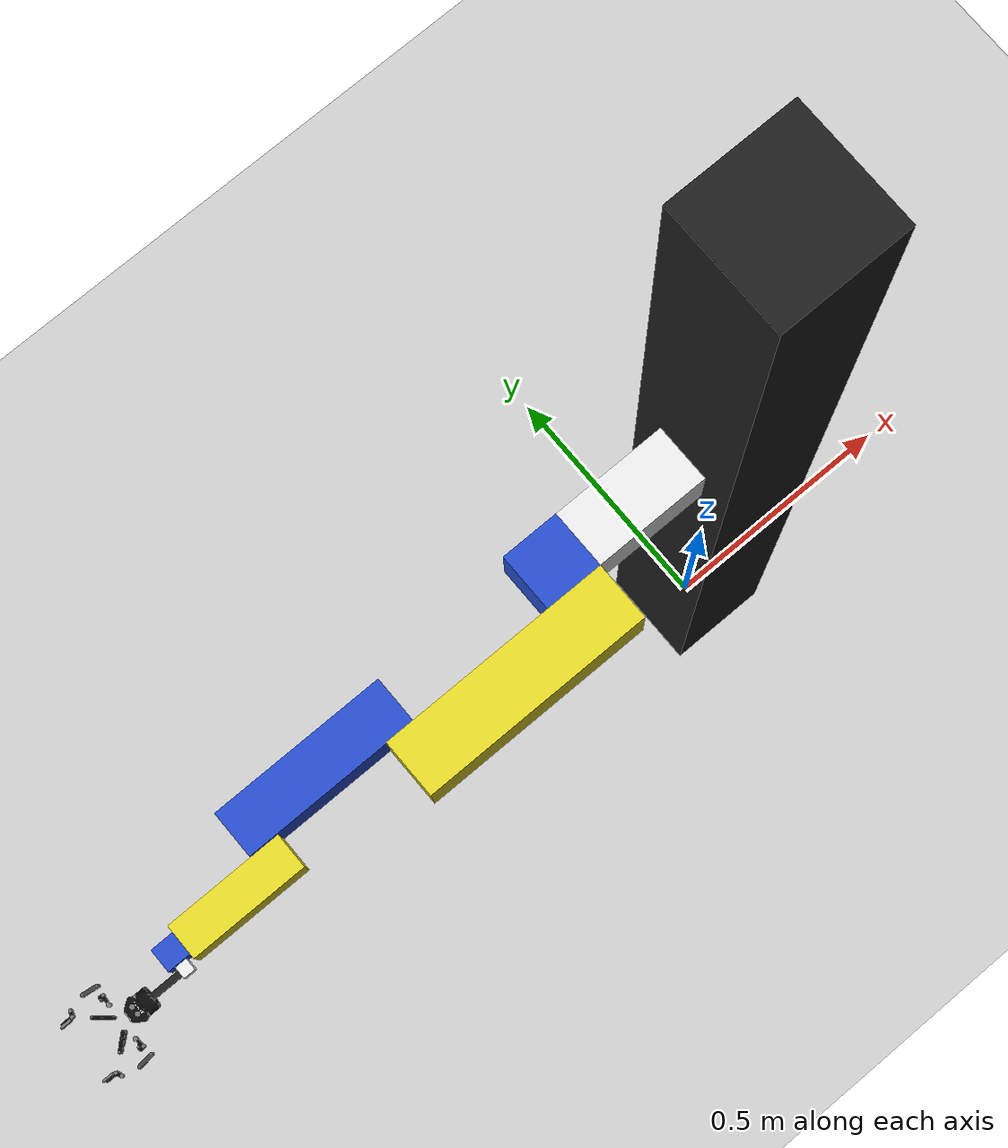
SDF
<sdf version="1.6">
 <world name="default">
  <model name="ground_plane">
   <static>1</static>
   <link name="link">
    <collision name="collision">
     <geometry><plane><normal>0 0 1</normal><size>100 100</size></plane></geometry>
     <surface>
      <contact><collide_bitmask>65535</collide_bitmask></contact>
      <friction><ode><mu>100</mu><mu2>50</mu2></ode></friction>
     </surface>
    </collision>
    <visual name="visual">
     <cast_shadows>0</cast_shadows>
     <geometry><plane><normal>0 0 1</normal><size>100 100</size></plane></geometry>
     <material>
      <script><uri>file://media/materials/scripts/gazebo.material</uri><name>Gazebo/Grey</name></script>
     </material>
    </visual>
   </link>
  </model>
  <model name="arm">
   <link name="base">
    <inertial>
     <pose>-1e-05 0 0.00012 0 -0 0</pose>
     <mass>1000.1</mass>
     <inertia>
      <ixx>86.8108</ixx>
      <ixy>-9.999e-17</ixy>
      <ixz>0.0119988</ixz>
      <iyy>86.812</iyy>
      <iyz>-1.29988e-11</iyz>
      <izz>86.6678</izz>
     </inertia>
    </inertial>
    <collision name="base_collision">
     <pose>0 0 1 0 -0 0</pose>
     <geometry><box><size>0.001 0.001 0.001</size></box></geometry>
     <surface><friction><ode><mu>0.2</mu><mu2>0.2</mu2></ode></friction></surface>
    </collision>
    <collision name="base_fixed_joint_lump__arm_base_collision_1">
     <pose>-0.2 0 1.2 0 -0 0</pose>
     <geometry><box><size>0 0 0</size></box></geometry>
     <surface><friction><ode><mu>0.2</mu><mu2>0.2</mu2></ode></friction></surface>
    </collision>
    <collision name="base_fixed_joint_lump__camera_collision_2">
     <pose>0 0.11 1.3 0 -0 0</pose>
     <geometry><box><size>0.02 0.02 0.02</size></box></geometry>
    </collision>
    <visual name="base_visual">
     <pose>0 0 1 0 -0 0</pose>
     <geometry><box><size>0.2 0.2 2</size></box></geometry>
     <material>
      <script><name>Gazebo/Black</name><uri>file://media/materials/scripts/gazebo.material</uri></script>
     </material>
    </visual>
    <visual name="base_fixed_joint_lump__arm_base_visual_1">
     <pose>-0.2 0 1.2 0 -0 0</pose>
     <geometry><box><size>0.2 0.1 0.1</size></box></geometry>
     <material>
      <script><name>Gazebo/White</name><uri>file://media/materials/scripts/gazebo.material</uri></script>
     </material>
    </visual>
    <visual name="base_fixed_joint_lump__camera_visual_2">
     <pose>0 0.11 1.3 0 -0 0</pose>
     <geometry><box><size>0.02 0.02 0.02</size></box></geometry>
     <material><script><uri>__default__</uri><name>__default__</name></script></material>
    </visual>
    <sensor name="camera" type="camera">
     <update_rate>30</update_rate>
     <camera name="head">
      <horizontal_fov>1.39626</horizontal_fov>
      <image><width>800</width><height>800</height><format>R8G8B8</format></image>
      <clip><near>0.02</near><far>300</far></clip>
      <noise><type>gaussian</type><mean>0</mean><stddev>0.007</stddev></noise>
     </camera>
     <plugin name="camera_controller" filename="libgazebo_ros_camera.so">
      <alwaysOn>true</alwaysOn>
      <updateRate>0.0</updateRate>
      <cameraName>arm/camera</cameraName>
      <imageTopicName>image_raw</imageTopicName>
      <cameraInfoTopicName>camera_info</cameraInfoTopicName>
      <frameName>camera_link</frameName>
      <hackBaseline>0.07</hackBaseline>
      <distortionK1>0.0</distortionK1>
      <distortionK2>0.0</distortionK2>
      <distortionK3>0.0</distortionK3>
      <distortionT1>0.0</distortionT1>
      <distortionT2>0.0</distortionT2>
      <robotNamespace>/</robotNamespace>
     </plugin>
     <pose>0 0.1 1.3 0 -0 0</pose>
    </sensor>
   </link>
   <joint name="fixed" type="fixed"><child>base</child><parent>world</parent></joint>
   <link name="rotate_base">
    <pose>-0.3 0 1.2 0 -0 0</pose>
    <inertial>
     <mass>40</mass>
     <inertia>
      <ixx>0.0666666</ixx>
      <ixy>0</ixy>
      <ixz>0</ixz>
      <iyy>0.0666666</iyy>
      <iyz>0</iyz>
      <izz>0.0666666</izz>
     </inertia>
    </inertial>
    <collision name="rotate_base_collision">
     <pose>-0.05 0 0 0 -0 0</pose>
     <geometry><box><size>0.1 0.1 0.1</size></box></geometry>
     <surface><friction><ode><mu>0.2</mu><mu2>0.2</mu2></ode></friction></surface>
    </collision>
    <visual name="rotate_base_visual">
     <pose>-0.05 0 0 0 -0 0</pose>
     <geometry><box><size>0.1 0.1 0.1</size></box></geometry>
     <material>
      <script><name>Gazebo/Blue</name><uri>file://media/materials/scripts/gazebo.material</uri></script>
     </material>
    </visual>
   </link>
   <joint name="rotation_joint" type="revolute">
    <child>rotate_base</child>
    <parent>base</parent>
    <axis>
     <xyz>1 0 0</xyz>
     <limit><lower>-6.28319</lower><upper>6.28319</upper><effort>150</effort><velocity>2</velocity></limit>
     <dynamics>
      <damping>0.1</damping>
      <friction>0.1</friction>
      <spring_reference>0</spring_reference>
      <spring_stiffness>0</spring_stiffness>
     </dynamics>
     <use_parent_model_frame>1</use_parent_model_frame>
    </axis>
   </joint>
   <link name="lower_arm">
    <pose>-0.35 -0.05 1.2 0 -0 0</pose>
    <inertial>
     <mass>10</mass>
     <inertia>
      <ixx>0.0166667</ixx>
      <ixy>0</ixy>
      <ixz>0</ixz>
      <iyy>0.141667</iyy>
      <iyz>0</iyz>
      <izz>0.0166667</izz>
     </inertia>
    </inertial>
    <collision name="lower_arm_collision">
     <pose>-0.15 -0.05 0 0 -0 0</pose>
     <geometry><box><size>0.4 0.1 0.1</size></box></geometry>
     <surface><friction><ode><mu>0.2</mu><mu2>0.2</mu2></ode></friction></surface>
    </collision>
    <visual name="lower_arm_visual">
     <pose>-0.15 -0.05 0 0 -0 0</pose>
     <geometry><box><size>0.4 0.1 0.1</size></box></geometry>
     <material>
      <script><name>Gazebo/Yellow</name><uri>file://media/materials/scripts/gazebo.material</uri></script>
     </material>
    </visual>
   </link>
   <joint name="lower_joint" type="revolute">
    <child>lower_arm</child>
    <parent>rotate_base</parent>
    <axis>
     <xyz>0 1 0</xyz>
     <limit><lower>-1.5708</lower><upper>1.5708</upper><effort>150</effort><velocity>2</velocity></limit>
     <dynamics>
      <damping>0.1</damping>
      <friction>0.1</friction>
      <spring_reference>0</spring_reference>
      <spring_stiffness>0</spring_stiffness>
     </dynamics>
     <use_parent_model_frame>1</use_parent_model_frame>
    </axis>
   </joint>
   <link name="mid_arm">
    <pose>-0.7 -0.05 1.2 0 -0 0</pose>
    <inertial>
     <mass>8</mass>
     <inertia>
      <ixx>0.00853333</ixx>
      <ixy>0</ixy>
      <ixz>0</ixz>
      <iyy>0.0642666</iyy>
      <iyz>0</iyz>
      <izz>0.00853333</izz>
     </inertia>
    </inertial>
    <collision name="mid_arm_collision">
     <pose>-0.1 0.04 0 0 -0 0</pose>
     <geometry><box><size>0.3 0.08 0.08</size></box></geometry>
     <surface><friction><ode><mu>0.2</mu><mu2>0.2</mu2></ode></friction></surface>
    </collision>
    <visual name="mid_arm_visual">
     <pose>-0.1 0.04 0 0 -0 0</pose>
     <geometry><box><size>0.3 0.08 0.08</size></box></geometry>
     <material>
      <script><name>Gazebo/Blue</name><uri>file://media/materials/scripts/gazebo.material</uri></script>
     </material>
    </visual>
   </link>
   <joint name="mid_joint" type="revolute">
    <child>mid_arm</child>
    <parent>lower_arm</parent>
    <axis>
     <xyz>0 1 0</xyz>
     <limit><lower>-1.5708</lower><upper>1.5708</upper><effort>150</effort><velocity>2</velocity></limit>
     <dynamics>
      <damping>0.1</damping>
      <friction>0.1</friction>
      <spring_reference>0</spring_reference>
      <spring_stiffness>0</spring_stiffness>
     </dynamics>
     <use_parent_model_frame>1</use_parent_model_frame>
    </axis>
   </joint>
   <link name="upper_arm">
    <pose>-0.95 -0.05 1.2 0 -0 0</pose>
    <inertial>
     <mass>6</mass>
     <inertia><ixx>0.0036</ixx><ixy>0</ixy><ixz>0</ixz><iyy>0.0218</iyy><iyz>0</iyz><izz>0.0036</izz></inertia>
    </inertial>
    <collision name="upper_arm_collision">
     <pose>-0.05 -0.03 0 0 -0 0</pose>
     <geometry><box><size>0.2 0.06 0.06</size></box></geometry>
     <surface><friction><ode><mu>0.2</mu><mu2>0.2</mu2></ode></friction></surface>
    </collision>
    <visual name="upper_arm_visual">
     <pose>-0.05 -0.03 0 0 -0 0</pose>
     <geometry><box><size>0.2 0.06 0.06</size></box></geometry>
     <material>
      <script><name>Gazebo/Yellow</name><uri>file://media/materials/scripts/gazebo.material</uri></script>
     </material>
    </visual>
   </link>
   <joint name="upper_joint" type="revolute">
    <child>upper_arm</child>
    <parent>mid_arm</parent>
    <axis>
     <xyz>0 1 0</xyz>
     <limit><lower>-1.5708</lower><upper>1.5708</upper><effort>150</effort><velocity>2</velocity></limit>
     <dynamics>
      <damping>0.1</damping>
      <friction>0.1</friction>
      <spring_reference>0</spring_reference>
      <spring_stiffness>0</spring_stiffness>
     </dynamics>
     <use_parent_model_frame>1</use_parent_model_frame>
    </axis>
   </joint>
   <link name="wrist1">
    <pose>-1.1 -0.08 1.2 0 -0 0</pose>
    <inertial>
     <mass>5</mass>
     <inertia>
      <ixx>0.00133333</ixx>
      <ixy>0</ixy>
      <ixz>0</ixz>
      <iyy>0.00133333</iyy>
      <iyz>0</iyz>
      <izz>0.00133333</izz>
     </inertia>
    </inertial>
    <collision name="wrist1_collision">
     <pose>-0.02 0 0 0 -0 0</pose>
     <geometry><box><size>0.04 0.04 0.04</size></box></geometry>
     <surface><friction><ode><mu>0.2</mu><mu2>0.2</mu2></ode></friction></surface>
    </collision>
    <visual name="wrist1_visual">
     <pose>-0.02 0 0 0 -0 0</pose>
     <geometry><box><size>0.04 0.04 0.04</size></box></geometry>
     <material>
      <script><name>Gazebo/Blue</name><uri>file://media/materials/scripts/gazebo.material</uri></script>
     </material>
    </visual>
   </link>
   <joint name="wrist1_joint" type="revolute">
    <child>wrist1</child>
    <parent>upper_arm</parent>
    <axis>
     <xyz>1 0 0</xyz>
     <limit><lower>-1.5708</lower><upper>1.5708</upper><effort>150</effort><velocity>2</velocity></limit>
     <dynamics>
      <damping>0.1</damping>
      <friction>0.1</friction>
      <spring_reference>0</spring_reference>
      <spring_stiffness>0</spring_stiffness>
     </dynamics>
     <use_parent_model_frame>1</use_parent_model_frame>
    </axis>
   </joint>
   <link name="wrist2">
    <pose>-1.12 -0.1 1.2 0 -0 0</pose>
    <inertial>
     <mass>4</mass>
     <inertia>
      <ixx>0.000266667</ixx>
      <ixy>0</ixy>
      <ixz>0</ixz>
      <iyy>0.000266667</iyy>
      <iyz>0</iyz>
      <izz>0.000266667</izz>
     </inertia>
    </inertial>
    <collision name="wrist2_collision">
     <pose>0 -0.01 0 0 -0 0</pose>
     <geometry><box><size>0.02 0.02 0.02</size></box></geometry>
     <surface><friction><ode><mu>0.2</mu><mu2>0.2</mu2></ode></friction></surface>
    </collision>
    <visual name="wrist2_visual">
     <pose>0 -0.01 0 0 -0 0</pose>
     <geometry><box><size>0.02 0.02 0.02</size></box></geometry>
     <material>
      <script><name>Gazebo/White</name><uri>file://media/materials/scripts/gazebo.material</uri></script>
     </material>
    </visual>
   </link>
   <joint name="wrist2_joint" type="revolute">
    <child>wrist2</child>
    <parent>wrist1</parent>
    <axis>
     <xyz>0 1 0</xyz>
     <limit><lower>-1.5708</lower><upper>1.5708</upper><effort>150</effort><velocity>2</velocity></limit>
     <dynamics>
      <damping>0.1</damping>
      <friction>0.1</friction>
      <spring_reference>0</spring_reference>
      <spring_stiffness>0</spring_stiffness>
     </dynamics>
     <use_parent_model_frame>1</use_parent_model_frame>
    </axis>
   </joint>
   <link name="wrist3">
    <pose>-1.13 -0.11 1.2 0 -0 0</pose>
    <inertial>
     <pose>-0.008757 0 0 0 -0 0</pose>
     <mass>3.63695</mass>
     <inertia>
      <ixx>0.00043</ixx>
      <ixy>8.93992e-20</ixy>
      <ixz>4.23895e-11</ixz>
      <iyy>0.0030735</iyy>
      <iyz>-7.47035e-21</iyz>
      <izz>0.0025345</izz>
     </inertia>
    </inertial>
    <collision name="wrist3_collision">
     <pose>-0.025 0 0 0 -0 0</pose>
     <geometry><box><size>0.05 0.01 0.01</size></box></geometry>
     <surface><friction><ode><mu>0.2</mu><mu2>0.2</mu2></ode></friction></surface>
    </collision>
    <collision name="wrist3_fixed_joint_lump__robotiq_85_base_link_collision_1">
     <pose>-0.05 0 0 3.14159 -0 3.14159</pose>
     <geometry>
      <mesh>
       <scale>1 1 1</scale>
       <uri>/home/leiyunfei/catkin_ws/src/robotiq/robotiq_description/meshes/collision/robotiq_85_base_link.stl</uri>
      </mesh>
     </geometry>
    </collision>
    <visual name="wrist3_visual">
     <pose>-0.025 0 0 0 -0 0</pose>
     <geometry><box><size>0.05 0.01 0.01</size></box></geometry>
     <material>
      <script><name>Gazebo/Black</name><uri>file://media/materials/scripts/gazebo.material</uri></script>
     </material>
    </visual>
    <visual name="wrist3_fixed_joint_lump__robotiq_85_base_link_visual_1">
     <pose>-0.05 0 0 3.14159 -0 3.14159</pose>
     <geometry>
      <mesh>
       <scale>1 1 1</scale>
       <uri>/home/leiyunfei/catkin_ws/src/robotiq/robotiq_description/meshes/visual/robotiq_85_base_link.dae</uri>
      </mesh>
     </geometry>
    </visual>
   </link>
   <joint name="wrist3_joint" type="revolute">
    <child>wrist3</child>
    <parent>wrist2</parent>
    <axis>
     <xyz>1 0 0</xyz>
     <limit><lower>-1.5708</lower><upper>1.5708</upper><effort>150</effort><velocity>2</velocity></limit>
     <dynamics>
      <damping>0.1</damping>
      <friction>0.1</friction>
      <spring_reference>0</spring_reference>
      <spring_stiffness>0</spring_stiffness>
     </dynamics>
     <use_parent_model_frame>1</use_parent_model_frame>
    </axis>
   </joint>
   <link name="robotiq_85_left_inner_knuckle_link">
    <pose>-1.24142 -0.0973 1.2 0 -0 3.14159</pose>
    <inertial>
     <mass>0.029951</mass>
     <inertia><ixx>3.9e-05</ixx><ixy>0</ixy><ixz>0</ixz><iyy>5e-06</iyy><iyz>0</iyz><izz>3.5e-05</izz></inertia>
    </inertial>
    <collision name="robotiq_85_left_inner_knuckle_link_collision">
     <geometry>
      <mesh>
       <scale>1 1 1</scale>
       <uri>/home/leiyunfei/catkin_ws/src/robotiq/robotiq_description/meshes/collision/robotiq_85_inner_knuckle_link.stl</uri>
      </mesh>
     </geometry>
    </collision>
    <visual name="robotiq_85_left_inner_knuckle_link_visual">
     <geometry>
      <mesh>
       <scale>1 1 1</scale>
       <uri>/home/leiyunfei/catkin_ws/src/robotiq/robotiq_description/meshes/visual/robotiq_85_inner_knuckle_link.dae</uri>
      </mesh>
     </geometry>
    </visual>
   </link>
   <joint name="robotiq_85_left_inner_knuckle_joint" type="revolute">
    <child>robotiq_85_left_inner_knuckle_link</child>
    <parent>wrist3</parent>
    <axis>
     <xyz>0 0 1</xyz>
     <limit><lower>-1e+16</lower><upper>1e+16</upper></limit>
     <dynamics><spring_reference>0</spring_reference><spring_stiffness>0</spring_stiffness></dynamics>
     <use_parent_model_frame>1</use_parent_model_frame>
    </axis>
   </joint>
   <link name="robotiq_85_left_finger_tip_link">
    <pose>-1.28446 -0.059701 1.2 0 -0 3.14159</pose>
    <inertial>
     <mass>0.019555</mass>
     <inertia><ixx>2e-06</ixx><ixy>0</ixy><ixz>0</ixz><iyy>5e-06</iyy><iyz>0</iyz><izz>6e-06</izz></inertia>
    </inertial>
    <collision name="robotiq_85_left_finger_tip_link_collision">
     <geometry>
      <mesh>
       <scale>1 1 1</scale>
       <uri>/home/leiyunfei/catkin_ws/src/robotiq/robotiq_description/meshes/collision/robotiq_85_finger_tip_link.stl</uri>
      </mesh>
     </geometry>
     <surface>
      <contact><ode><kp>1e+06</kp><kd>1</kd><min_depth>0.001</min_depth></ode></contact>
      <friction><ode><mu>1</mu><mu2>1</mu2></ode></friction>
     </surface>
    </collision>
    <visual name="robotiq_85_left_finger_tip_link_visual">
     <geometry>
      <mesh>
       <scale>1 1 1</scale>
       <uri>/home/leiyunfei/catkin_ws/src/robotiq/robotiq_description/meshes/visual/robotiq_85_finger_tip_link.dae</uri>
      </mesh>
     </geometry>
     <material><script><uri>__default__</uri><name>__default__</name></script></material>
    </visual>
   </link>
   <joint name="robotiq_85_left_finger_tip_joint" type="revolute">
    <child>robotiq_85_left_finger_tip_link</child>
    <parent>robotiq_85_left_inner_knuckle_link</parent>
    <axis>
     <xyz>0 0 1</xyz>
     <limit><lower>-1e+16</lower><upper>1e+16</upper></limit>
     <dynamics><spring_reference>0</spring_reference><spring_stiffness>0</spring_stiffness></dynamics>
     <use_parent_model_frame>1</use_parent_model_frame>
    </axis>
   </joint>
   <link name="robotiq_85_left_knuckle_link">
    <pose>-1.2349 -0.079399 1.2 0 -0 3.14159</pose>
    <inertial>
     <pose>-0.002436 -0.018774 0 0 -0 0</pose>
     <mass>0.0458</mass>
     <inertia>
      <ixx>2.29304e-05</ixx>
      <ixy>-4.4183e-06</ixy>
      <ixz>0</ixz>
      <iyy>2.2184e-05</iyy>
      <iyz>0</iyz>
      <izz>4.11145e-05</izz>
     </inertia>
    </inertial>
    <collision name="robotiq_85_left_knuckle_link_collision">
     <geometry>
      <mesh>
       <scale>1 1 1</scale>
       <uri>/home/leiyunfei/catkin_ws/src/robotiq/robotiq_description/meshes/collision/robotiq_85_knuckle_link.stl</uri>
      </mesh>
     </geometry>
    </collision>
    <collision name="robotiq_85_left_knuckle_link_fixed_joint_lump__robotiq_85_left_finger_link_collision_1">
     <pose>-0.004086 -0.031486 0 0 -0 0</pose>
     <geometry>
      <mesh>
       <scale>1 1 1</scale>
       <uri>/home/leiyunfei/catkin_ws/src/robotiq/robotiq_description/meshes/collision/robotiq_85_finger_link.stl</uri>
      </mesh>
     </geometry>
    </collision>
    <visual name="robotiq_85_left_knuckle_link_visual">
     <geometry>
      <mesh>
       <scale>1 1 1</scale>
       <uri>/home/leiyunfei/catkin_ws/src/robotiq/robotiq_description/meshes/visual/robotiq_85_knuckle_link.dae</uri>
      </mesh>
     </geometry>
    </visual>
    <visual name="robotiq_85_left_knuckle_link_fixed_joint_lump__robotiq_85_left_finger_link_visual_1">
     <pose>-0.004086 -0.031486 0 0 -0 0</pose>
     <geometry>
      <mesh>
       <scale>1 1 1</scale>
       <uri>/home/leiyunfei/catkin_ws/src/robotiq/robotiq_description/meshes/visual/robotiq_85_finger_link.dae</uri>
      </mesh>
     </geometry>
    </visual>
   </link>
   <joint name="robotiq_85_left_knuckle_joint" type="revolute">
    <child>robotiq_85_left_knuckle_link</child>
    <parent>wrist3</parent>
    <axis>
     <xyz>0 0 1</xyz>
     <limit><lower>0</lower><upper>0.80285</upper><effort>1000</effort><velocity>0.5</velocity></limit>
     <dynamics><spring_reference>0</spring_reference><spring_stiffness>0</spring_stiffness></dynamics>
     <use_parent_model_frame>1</use_parent_model_frame>
    </axis>
   </joint>
   <link name="robotiq_85_right_inner_knuckle_link">
    <pose>-1.24142 -0.1227 1.2 3.14159 -0 3.14159</pose>
    <inertial>
     <mass>0.029951</mass>
     <inertia><ixx>3.9e-05</ixx><ixy>0</ixy><ixz>0</ixz><iyy>5e-06</iyy><iyz>0</iyz><izz>3.5e-05</izz></inertia>
    </inertial>
    <collision name="robotiq_85_right_inner_knuckle_link_collision">
     <geometry>
      <mesh>
       <scale>1 1 1</scale>
       <uri>/home/leiyunfei/catkin_ws/src/robotiq/robotiq_description/meshes/collision/robotiq_85_inner_knuckle_link.stl</uri>
      </mesh>
     </geometry>
    </collision>
    <visual name="robotiq_85_right_inner_knuckle_link_visual">
     <geometry>
      <mesh>
       <scale>1 1 1</scale>
       <uri>/home/leiyunfei/catkin_ws/src/robotiq/robotiq_description/meshes/visual/robotiq_85_inner_knuckle_link.dae</uri>
      </mesh>
     </geometry>
    </visual>
   </link>
   <joint name="robotiq_85_right_inner_knuckle_joint" type="revolute">
    <child>robotiq_85_right_inner_knuckle_link</child>
    <parent>wrist3</parent>
    <axis>
     <xyz>0 0 -1</xyz>
     <limit><lower>-1e+16</lower><upper>1e+16</upper></limit>
     <dynamics><spring_reference>0</spring_reference><spring_stiffness>0</spring_stiffness></dynamics>
     <use_parent_model_frame>1</use_parent_model_frame>
    </axis>
   </joint>
   <link name="robotiq_85_right_finger_tip_link">
    <pose>-1.28446 -0.160299 1.2 3.14159 -0 3.14159</pose>
    <inertial>
     <mass>0.019555</mass>
     <inertia><ixx>2e-06</ixx><ixy>0</ixy><ixz>0</ixz><iyy>5e-06</iyy><iyz>0</iyz><izz>6e-06</izz></inertia>
    </inertial>
    <collision name="robotiq_85_right_finger_tip_link_collision">
     <geometry>
      <mesh>
       <scale>1 1 1</scale>
       <uri>/home/leiyunfei/catkin_ws/src/robotiq/robotiq_description/meshes/collision/robotiq_85_finger_tip_link.stl</uri>
      </mesh>
     </geometry>
     <surface>
      <contact><ode><kp>1e+06</kp><kd>1</kd><min_depth>0.001</min_depth></ode></contact>
      <friction><ode><mu>1</mu><mu2>1</mu2></ode></friction>
     </surface>
    </collision>
    <visual name="robotiq_85_right_finger_tip_link_visual">
     <geometry>
      <mesh>
       <scale>1 1 1</scale>
       <uri>/home/leiyunfei/catkin_ws/src/robotiq/robotiq_description/meshes/visual/robotiq_85_finger_tip_link.dae</uri>
      </mesh>
     </geometry>
     <material><script><uri>__default__</uri><name>__default__</name></script></material>
    </visual>
   </link>
   <joint name="robotiq_85_right_finger_tip_joint" type="revolute">
    <child>robotiq_85_right_finger_tip_link</child>
    <parent>robotiq_85_right_inner_knuckle_link</parent>
    <axis>
     <xyz>0 0 -1</xyz>
     <limit><lower>-1e+16</lower><upper>1e+16</upper></limit>
     <dynamics><spring_reference>0</spring_reference><spring_stiffness>0</spring_stiffness></dynamics>
     <use_parent_model_frame>1</use_parent_model_frame>
    </axis>
   </joint>
   <link name="robotiq_85_right_knuckle_link">
    <pose>-1.2349 -0.140601 1.2 3.14159 -0 3.14159</pose>
    <inertial>
     <pose>-0.002436 -0.018774 0 0 -0 0</pose>
     <mass>0.0458</mass>
     <inertia>
      <ixx>2.29304e-05</ixx>
      <ixy>-4.4183e-06</ixy>
      <ixz>0</ixz>
      <iyy>2.2184e-05</iyy>
      <iyz>0</iyz>
      <izz>4.11145e-05</izz>
     </inertia>
    </inertial>
    <collision name="robotiq_85_right_knuckle_link_collision">
     <geometry>
      <mesh>
       <scale>1 1 1</scale>
       <uri>/home/leiyunfei/catkin_ws/src/robotiq/robotiq_description/meshes/collision/robotiq_85_knuckle_link.stl</uri>
      </mesh>
     </geometry>
    </collision>
    <collision name="robotiq_85_right_knuckle_link_fixed_joint_lump__robotiq_85_right_finger_link_collision_1">
     <pose>-0.004086 -0.031486 0 0 -0 0</pose>
     <geometry>
      <mesh>
       <scale>1 1 1</scale>
       <uri>/home/leiyunfei/catkin_ws/src/robotiq/robotiq_description/meshes/collision/robotiq_85_finger_link.stl</uri>
      </mesh>
     </geometry>
    </collision>
    <visual name="robotiq_85_right_knuckle_link_visual">
     <geometry>
      <mesh>
       <scale>1 1 1</scale>
       <uri>/home/leiyunfei/catkin_ws/src/robotiq/robotiq_description/meshes/visual/robotiq_85_knuckle_link.dae</uri>
      </mesh>
     </geometry>
    </visual>
    <visual name="robotiq_85_right_knuckle_link_fixed_joint_lump__robotiq_85_right_finger_link_visual_1">
     <pose>-0.004086 -0.031486 0 0 -0 0</pose>
     <geometry>
      <mesh>
       <scale>1 1 1</scale>
       <uri>/home/leiyunfei/catkin_ws/src/robotiq/robotiq_description/meshes/visual/robotiq_85_finger_link.dae</uri>
      </mesh>
     </geometry>
    </visual>
   </link>
   <joint name="robotiq_85_right_knuckle_joint" type="revolute">
    <child>robotiq_85_right_knuckle_link</child>
    <parent>wrist3</parent>
    <axis>
     <xyz>0 0 -1</xyz>
     <limit><lower>-1e+16</lower><upper>1e+16</upper></limit>
     <dynamics><spring_reference>0</spring_reference><spring_stiffness>0</spring_stiffness></dynamics>
     <use_parent_model_frame>1</use_parent_model_frame>
    </axis>
   </joint>
   <plugin name="mimic_robotiq_85_1" filename="libgazebo_mimic_joint_plugin.so">
    <joint>robotiq_85_left_knuckle_joint</joint>
    <mimicJoint>robotiq_85_right_knuckle_joint</mimicJoint>
    <robotNamespace>/</robotNamespace>
   </plugin>
   <plugin name="mimic_robotiq_85_2" filename="libgazebo_mimic_joint_plugin.so">
    <joint>robotiq_85_left_knuckle_joint</joint>
    <mimicJoint>robotiq_85_left_inner_knuckle_joint</mimicJoint>
    <robotNamespace>/</robotNamespace>
   </plugin>
   <plugin name="mimic_robotiq_85_3" filename="libgazebo_mimic_joint_plugin.so">
    <joint>robotiq_85_left_knuckle_joint</joint>
    <mimicJoint>robotiq_85_right_inner_knuckle_joint</mimicJoint>
    <robotNamespace>/</robotNamespace>
   </plugin>
   <plugin name="mimic_robotiq_85_4" filename="libgazebo_mimic_joint_plugin.so">
    <joint>robotiq_85_left_knuckle_joint</joint>
    <mimicJoint>robotiq_85_left_finger_tip_joint</mimicJoint>
    <multiplier>-1.0</multiplier>
    <offset>0.0</offset>
    <robotNamespace>/</robotNamespace>
   </plugin>
   <plugin name="mimic_robotiq_85_5" filename="libgazebo_mimic_joint_plugin.so">
    <joint>robotiq_85_left_knuckle_joint</joint>
    <mimicJoint>robotiq_85_right_finger_tip_joint</mimicJoint>
    <multiplier>-1.0</multiplier>
    <offset>0.0</offset>
    <robotNamespace>/</robotNamespace>
   </plugin>
   <static>0</static>
   <plugin name="gazebo_ros_control" filename="libgazebo_ros_control.so">
    <robotNamespace>/arm</robotNamespace>
   </plugin>
  </model>
 </world>
</sdf>
